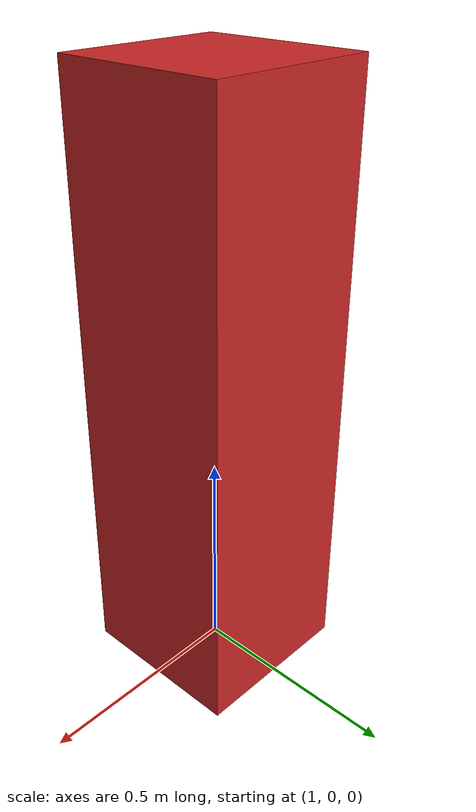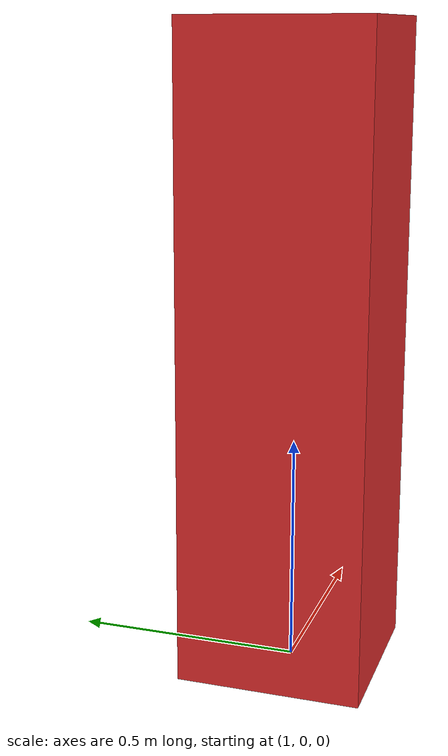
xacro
<?xml version="1.0"?>
<robot name="box1" xmlns:xacro="http:/www.ros.org/wiki/xacro">

  <xacro:include filename="$(find test_gazebo_camera)/urdf/box1.gazebo"/>
  <xacro:include filename="$(find test_gazebo_camera)/urdf/materials.xacro"/>
  <xacro:property name="x" value="1.0"/>

  <link name="world"/>
  <joint name="fix" type="fixed">
    <origin xyz = "0 0 0" rpy="0 0 0"/>
    <parent link = "world"/>
    <child link = "link1"/>
  </joint>

  <link name="link1">
    <collision>
      <origin xyz = "${x} 0 0.7" rpy="0 0 0"/>
      <geometry>
        <box size = "0.4 0.4 1.4" rpy="0 0 0"/>
      </geometry>
    </collision>

    <visual>
      <origin xyz = "${x} 0 0.7" rpy="0 0 0"/>
      <geometry>
        <box size = "0.4 0.4 1.4" rpy="0 0 0"/>
      </geometry>
      <material name="red"/>
    </visual>

    <inertial>
      <mass value = "0.001"/>
      <origin xyz = "${x} 0 0.7" rpy="0 0 0"/>
      <inertia ixx="0.0001" ixy = "0" ixz = "0" iyy= "0.0001" iyz="0" izz="0.0001"/>
    </inertial>
  </link>
</robot>
